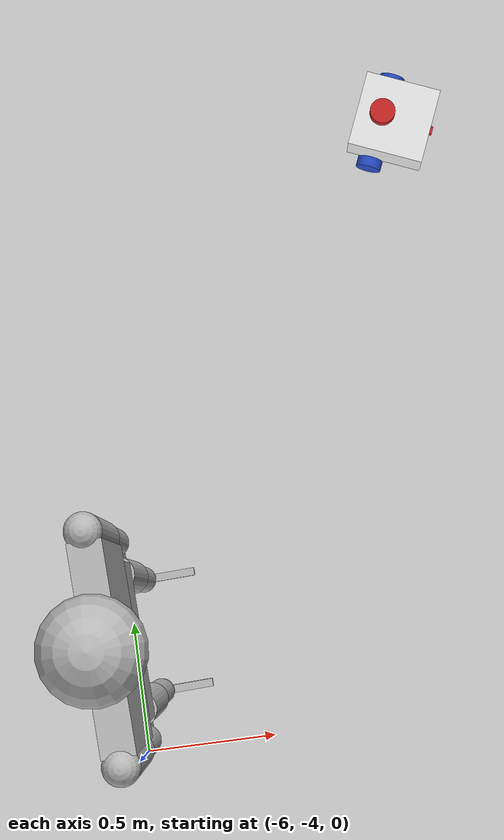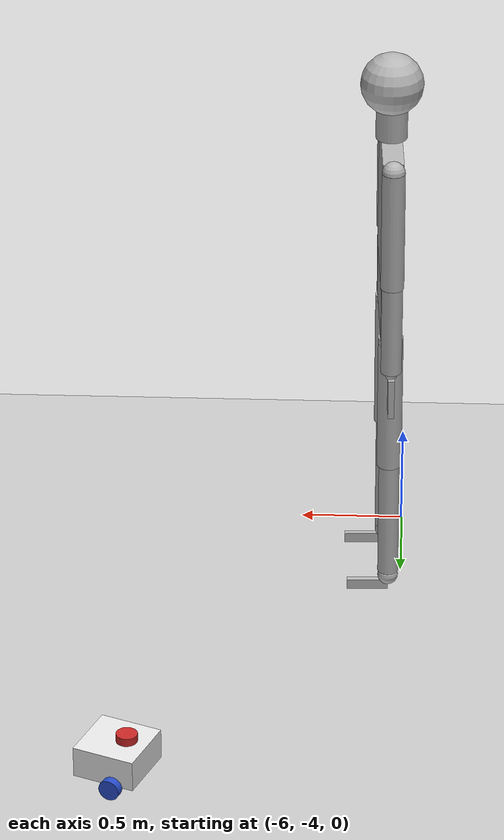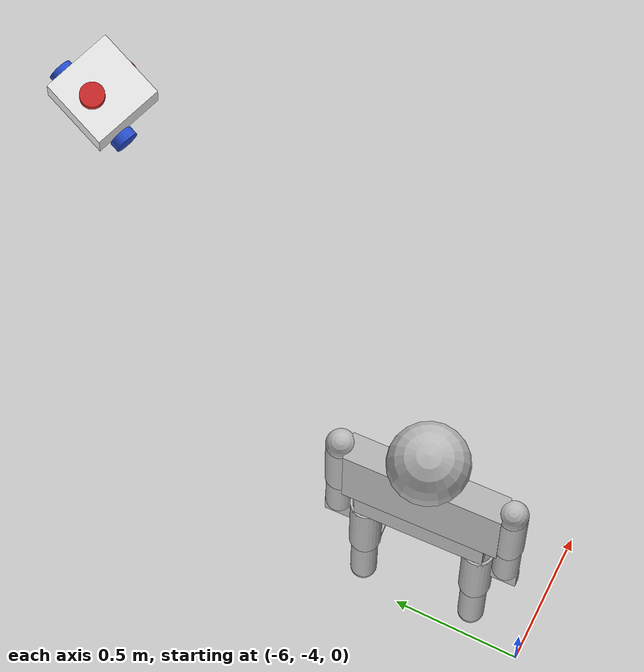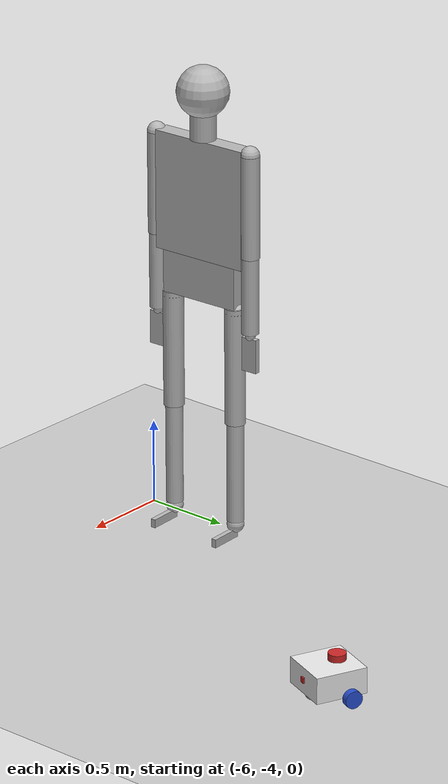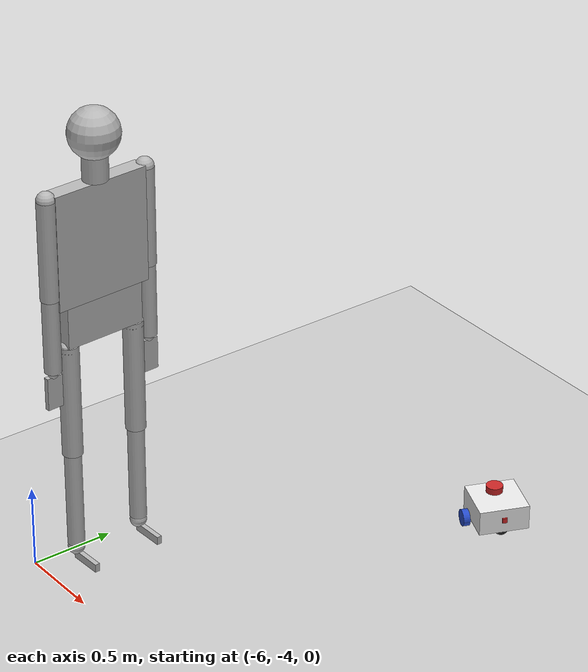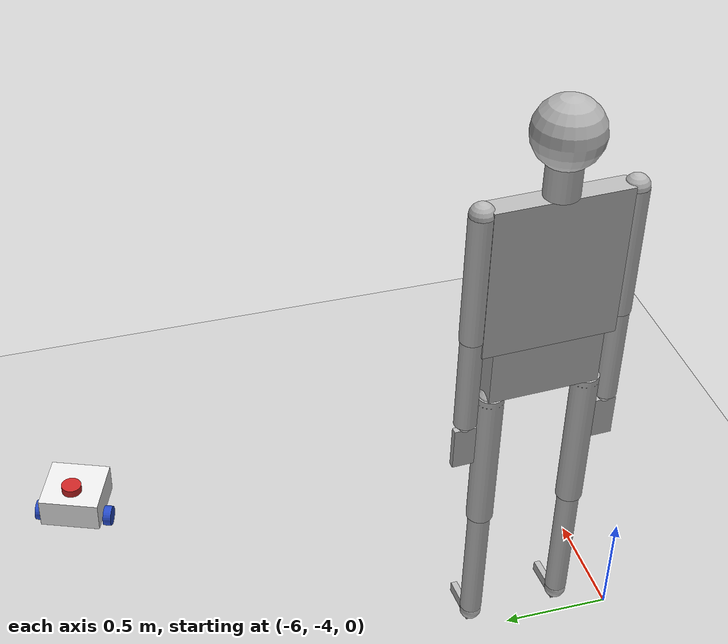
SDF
<sdf version="1.7">
 <world name="default">
  <model name="ground_plane">
   <static>1</static>
   <link name="link">
    <collision name="collision">
     <geometry><plane><normal>0 0 1</normal><size>100 100</size></plane></geometry>
     <surface>
      <contact><collide_bitmask>65535</collide_bitmask></contact>
      <friction><ode><mu>100</mu><mu2>50</mu2></ode></friction>
     </surface>
    </collision>
    <visual name="visual">
     <cast_shadows>0</cast_shadows>
     <geometry><plane><normal>0 0 1</normal><size>100 100</size></plane></geometry>
     <material>
      <script><uri>file://media/materials/scripts/gazebo.material</uri><name>Gazebo/Grey</name></script>
     </material>
    </visual>
   </link>
  </model>
  <model name="my_bot">
   <link name="base_link">
    <inertial>
     <pose>0.055714 0 0.078571 0 -0 0</pose>
     <mass>0.7</mass>
     <inertia>
      <ixx>0.0064169</ixx>
      <ixy>0</ixy>
      <ixz>0.00118929</ixz>
      <iyy>0.00745405</iyy>
      <iyz>0</iyz>
      <izz>0.00876214</izz>
     </inertia>
    </inertial>
    <collision name="base_link_fixed_joint_lump__chassis_collision">
     <pose>0.05 0 0.075 0 -0 0</pose>
     <geometry><box><size>0.3 0.3 0.15</size></box></geometry>
    </collision>
    <collision name="base_link_fixed_joint_lump__caster_wheel_collision_1">
     <pose>0.14 0 0 0 -0 0</pose>
     <geometry><sphere><radius>0.05</radius></sphere></geometry>
     <surface><friction><ode><mu>0.001</mu><mu2>0.001</mu2></ode></friction></surface>
    </collision>
    <collision name="base_link_fixed_joint_lump__laser_frame_collision_2">
     <pose>0 0 0.175 0 -0 0</pose>
     <geometry><cylinder><length>0.04</length><radius>0.05</radius></cylinder></geometry>
    </collision>
    <visual name="base_link_fixed_joint_lump__chassis_visual">
     <pose>0.05 0 0.075 0 -0 0</pose>
     <geometry><box><size>0.3 0.3 0.15</size></box></geometry>
     <material>
      <script><name>Gazebo/White</name><uri>file://media/materials/scripts/gazebo.material</uri></script>
     </material>
    </visual>
    <visual name="base_link_fixed_joint_lump__camera_link_visual_1">
     <pose>0.205 0 0.08 0 -0 0</pose>
     <geometry><box><size>0.01 0.03 0.03</size></box></geometry>
     <material>
      <script><name>Gazebo/Red</name><uri>file://media/materials/scripts/gazebo.material</uri></script>
     </material>
    </visual>
    <visual name="base_link_fixed_joint_lump__caster_wheel_visual_2">
     <pose>0.14 0 0 0 -0 0</pose>
     <geometry><sphere><radius>0.05</radius></sphere></geometry>
     <material>
      <script><name>Gazebo/Black</name><uri>file://media/materials/scripts/gazebo.material</uri></script>
     </material>
    </visual>
    <visual name="base_link_fixed_joint_lump__laser_frame_visual_3">
     <pose>0 0 0.175 0 -0 0</pose>
     <geometry><cylinder><length>0.04</length><radius>0.05</radius></cylinder></geometry>
     <material>
      <script><name>Gazebo/Red</name><uri>file://media/materials/scripts/gazebo.material</uri></script>
     </material>
    </visual>
    <sensor name="camera" type="camera">
     <visualize>1</visualize>
     <update_rate>10</update_rate>
     <camera>
      <horizontal_fov>1.089</horizontal_fov>
      <image><format>R8G8B8</format><width>640</width><height>480</height></image>
      <clip><near>0.05</near><far>8</far></clip>
     </camera>
     <plugin name="camera_controller" filename="libgazebo_ros_camera.so">
      <frame_name>camera_link_optical</frame_name>
     </plugin>
     <pose>0.205 0 0.08 0 -0 0</pose>
    </sensor>
    <sensor name="laser" type="ray">
     <visualize>0</visualize>
     <update_rate>10</update_rate>
     <ray>
      <scan>
       <horizontal>
        <samples>360</samples>
        <min_angle>-3.14</min_angle>
        <max_angle>3.14</max_angle>
        <resolution>1</resolution>
       </horizontal>
       <vertical><samples>1</samples><min_angle>0</min_angle><max_angle>0</max_angle></vertical>
      </scan>
      <range><min>0.3</min><max>12</max></range>
     </ray>
     <plugin name="laser_controller" filename="libgazebo_ros_ray_sensor.so">
      <ros><argument>~/out:=scan</argument></ros>
      <output_type>sensor_msgs/LaserScan</output_type>
      <frame_name>laser_frame</frame_name>
     </plugin>
     <pose>0 0 0.175 0 -0 0</pose>
    </sensor>
   </link>
   <joint name="left_wheel_joint" type="revolute">
    <pose relative_to="base_link">0 0.175 0 -1.5708 0 0</pose>
    <parent>base_link</parent>
    <child>left_wheel</child>
    <axis>
     <xyz>0 0 1</xyz>
     <limit><lower>-1e+16</lower><upper>1e+16</upper></limit>
     <dynamics><spring_reference>0</spring_reference><spring_stiffness>0</spring_stiffness></dynamics>
    </axis>
   </joint>
   <link name="left_wheel">
    <pose relative_to="left_wheel_joint">0 0 0 0 -0 0</pose>
    <inertial>
     <mass>0.1</mass>
     <inertia>
      <ixx>7.58333e-05</ixx>
      <ixy>0</ixy>
      <ixz>0</ixz>
      <iyy>7.58333e-05</iyy>
      <iyz>0</iyz>
      <izz>0.000125</izz>
     </inertia>
    </inertial>
    <collision name="left_wheel_collision">
     <geometry><cylinder><length>0.04</length><radius>0.05</radius></cylinder></geometry>
    </collision>
    <visual name="left_wheel_visual">
     <geometry><cylinder><length>0.04</length><radius>0.05</radius></cylinder></geometry>
     <material>
      <script><name>Gazebo/Blue</name><uri>file://media/materials/scripts/gazebo.material</uri></script>
     </material>
    </visual>
   </link>
   <joint name="right_wheel_joint" type="revolute">
    <pose relative_to="base_link">0 -0.175 0 1.5708 -0 0</pose>
    <parent>base_link</parent>
    <child>right_wheel</child>
    <axis>
     <xyz>0 0 -1</xyz>
     <limit><lower>-1e+16</lower><upper>1e+16</upper></limit>
     <dynamics><spring_reference>0</spring_reference><spring_stiffness>0</spring_stiffness></dynamics>
    </axis>
   </joint>
   <link name="right_wheel">
    <pose relative_to="right_wheel_joint">0 0 0 0 -0 0</pose>
    <inertial>
     <mass>0.1</mass>
     <inertia>
      <ixx>7.58333e-05</ixx>
      <ixy>0</ixy>
      <ixz>0</ixz>
      <iyy>7.58333e-05</iyy>
      <iyz>0</iyz>
      <izz>0.000125</izz>
     </inertia>
    </inertial>
    <collision name="right_wheel_collision">
     <geometry><cylinder><length>0.04</length><radius>0.05</radius></cylinder></geometry>
    </collision>
    <visual name="right_wheel_visual">
     <geometry><cylinder><length>0.04</length><radius>0.05</radius></cylinder></geometry>
     <material>
      <script><name>Gazebo/Blue</name><uri>file://media/materials/scripts/gazebo.material</uri></script>
     </material>
    </visual>
   </link>
   <static>0</static>
   <plugin name="diff_drive" filename="libgazebo_ros_diff_drive.so">
    <left_joint>left_wheel_joint</left_joint>
    <right_joint>right_wheel_joint</right_joint>
    <wheel_separation>0.35</wheel_separation>
    <wheel_diameter>0.1</wheel_diameter>
    <max_wheel_torque>200</max_wheel_torque>
    <max_wheel_acceleration>10.0</max_wheel_acceleration>
    <odometry_frame>odom</odometry_frame>
    <robot_base_frame>base_link</robot_base_frame>
    <publish_odom>1</publish_odom>
    <publish_odom_tf>1</publish_odom_tf>
    <publish_wheel_tf>1</publish_wheel_tf>
   </plugin>
   <pose>-4.76983 -1.62891 0.05 -0 2e-06 -0.390054</pose>
  </model>
  <model name="ragdoll_clone">
   <pose>-5.92132 -3.55143 1.39993 -0.000119 0.004744 0.04412</pose>
   <link name="hip">
    <inertial>
     <inertia><ixx>0.1</ixx><ixy>0</ixy><ixz>0</ixz><iyy>0.1</iyy><iyz>0</iyz><izz>0.1</izz></inertia>
     <mass>10</mass>
    </inertial>
    <collision name="hip_geom">
     <pose>0 0 0.125 0 -0 0</pose>
     <geometry><box><size>0.1 0.5 0.25</size></box></geometry>
     <surface>
      <friction><ode><mu>-1</mu><mu2>-1</mu2><fdir1>0 0 0</fdir1><slip1>0</slip1><slip2>0</slip2></ode></friction>
      <bounce><restitution_coefficient>0</restitution_coefficient><threshold>100000</threshold></bounce>
      <contact>
       <ode>
        <soft_cfm>0</soft_cfm>
        <soft_erp>0.2</soft_erp>
        <kp>1e+12</kp>
        <kd>1</kd>
        <max_vel>0</max_vel>
        <min_depth>0.001</min_depth>
       </ode>
      </contact>
     </surface>
    </collision>
    <visual name="hip_geom_visual">
     <pose>0 0 0.125 0 -0 0</pose>
     <geometry><box><size>0.1 0.5 0.25</size></box></geometry>
    </visual>
    <gravity>0</gravity>
   </link>
   <link name="l_thigh_pan">
    <pose>0 0.22 0 0 -0 0</pose>
    <inertial>
     <inertia><ixx>0.01</ixx><ixy>0</ixy><ixz>0</ixz><iyy>0.01</iyy><iyz>0</iyz><izz>0.01</izz></inertia>
     <mass>1</mass>
    </inertial>
    <collision name="l_thigh_pan_geom">
     <pose>0 0 -0.03 0 -0 0</pose>
     <geometry><sphere><radius>0.06</radius></sphere></geometry>
     <surface>
      <friction><ode><mu>-1</mu><mu2>-1</mu2><fdir1>0 0 0</fdir1><slip1>0</slip1><slip2>0</slip2></ode></friction>
      <bounce><restitution_coefficient>0</restitution_coefficient><threshold>100000</threshold></bounce>
      <contact>
       <ode>
        <soft_cfm>0</soft_cfm>
        <soft_erp>0.2</soft_erp>
        <kp>1e+12</kp>
        <kd>1</kd>
        <max_vel>0</max_vel>
        <min_depth>0.001</min_depth>
       </ode>
      </contact>
     </surface>
    </collision>
    <visual name="l_thigh_pan_geom_visual">
     <pose>0 0 -0.03 0 -0 0</pose>
     <geometry><sphere><radius>0.06</radius></sphere></geometry>
    </visual>
    <gravity>0</gravity>
   </link>
   <link name="l_thigh_lift">
    <pose>0 0.22 0 0 -0 0</pose>
    <inertial>
     <inertia><ixx>0.05</ixx><ixy>0</ixy><ixz>0</ixz><iyy>0.05</iyy><iyz>0</iyz><izz>0.05</izz></inertia>
     <mass>5</mass>
    </inertial>
    <collision name="l_thigh_lift_geom">
     <pose>0 0 -0.35 0 -0 0</pose>
     <geometry><cylinder><radius>0.06</radius><length>0.7</length></cylinder></geometry>
     <surface>
      <friction><ode><mu>-1</mu><mu2>-1</mu2><fdir1>0 0 0</fdir1><slip1>0</slip1><slip2>0</slip2></ode></friction>
      <bounce><restitution_coefficient>0</restitution_coefficient><threshold>100000</threshold></bounce>
      <contact>
       <ode>
        <soft_cfm>0</soft_cfm>
        <soft_erp>0.2</soft_erp>
        <kp>1e+12</kp>
        <kd>1</kd>
        <max_vel>0</max_vel>
        <min_depth>0.001</min_depth>
       </ode>
      </contact>
     </surface>
    </collision>
    <visual name="l_thigh_lift_geom_visual">
     <pose>0 0 -0.35 0 -0 0</pose>
     <geometry><cylinder><radius>0.06</radius><length>0.7</length></cylinder></geometry>
    </visual>
    <gravity>0</gravity>
   </link>
   <link name="l_calf">
    <pose>0 0.22 -0.7 0 -0 0</pose>
    <inertial>
     <inertia><ixx>0.02</ixx><ixy>0</ixy><ixz>0</ixz><iyy>0.02</iyy><iyz>0</iyz><izz>0.02</izz></inertia>
     <mass>2</mass>
    </inertial>
    <collision name="l_calf_geom">
     <pose>0 0 -0.3 0 -0 0</pose>
     <geometry><cylinder><radius>0.05</radius><length>0.6</length></cylinder></geometry>
     <surface>
      <friction><ode><mu>-1</mu><mu2>-1</mu2><fdir1>0 0 0</fdir1><slip1>0</slip1><slip2>0</slip2></ode></friction>
      <bounce><restitution_coefficient>0</restitution_coefficient><threshold>100000</threshold></bounce>
      <contact>
       <ode>
        <soft_cfm>0</soft_cfm>
        <soft_erp>0.2</soft_erp>
        <kp>1e+12</kp>
        <kd>1</kd>
        <max_vel>0</max_vel>
        <min_depth>0.001</min_depth>
       </ode>
      </contact>
     </surface>
    </collision>
    <visual name="l_calf_geom_visual">
     <pose>0 0 -0.3 0 -0 0</pose>
     <geometry><cylinder><radius>0.05</radius><length>0.6</length></cylinder></geometry>
    </visual>
    <gravity>0</gravity>
   </link>
   <link name="l_ankle">
    <pose>0 0.22 -1.325 0 -0 0</pose>
    <inertial>
     <inertia><ixx>0.01</ixx><ixy>0</ixy><ixz>0</ixz><iyy>0.01</iyy><iyz>0</iyz><izz>0.01</izz></inertia>
     <mass>1</mass>
    </inertial>
    <collision name="l_ankle_geom">
     <geometry><sphere><radius>0.05</radius></sphere></geometry>
     <surface>
      <friction><ode><mu>-1</mu><mu2>-1</mu2><fdir1>0 0 0</fdir1><slip1>0</slip1><slip2>0</slip2></ode></friction>
      <bounce><restitution_coefficient>0</restitution_coefficient><threshold>100000</threshold></bounce>
      <contact>
       <ode>
        <soft_cfm>0</soft_cfm>
        <soft_erp>0.2</soft_erp>
        <kp>1e+12</kp>
        <kd>1</kd>
        <max_vel>0</max_vel>
        <min_depth>0.001</min_depth>
       </ode>
      </contact>
     </surface>
    </collision>
    <visual name="l_ankle_geom_visual"><geometry><sphere><radius>0.05</radius></sphere></geometry></visual>
    <gravity>0</gravity>
   </link>
   <link name="l_foot">
    <pose>0 0.22 -1.35 0 -0 0</pose>
    <inertial>
     <pose>0.1 0 0 0 -0 0</pose>
     <inertia><ixx>0.01</ixx><ixy>0</ixy><ixz>0</ixz><iyy>0.01</iyy><iyz>0</iyz><izz>0.01</izz></inertia>
     <mass>1</mass>
    </inertial>
    <collision name="l_foot_geom">
     <pose>0.1 0 -0.025 0 -0 0</pose>
     <geometry><box><size>0.2 0.03 0.05</size></box></geometry>
     <surface>
      <friction><ode><mu>-1</mu><mu2>-1</mu2><fdir1>0 0 0</fdir1><slip1>0</slip1><slip2>0</slip2></ode></friction>
      <bounce><restitution_coefficient>0</restitution_coefficient><threshold>100000</threshold></bounce>
      <contact>
       <ode>
        <soft_cfm>0</soft_cfm>
        <soft_erp>0.2</soft_erp>
        <kp>1e+12</kp>
        <kd>1</kd>
        <max_vel>0</max_vel>
        <min_depth>0.001</min_depth>
       </ode>
      </contact>
     </surface>
    </collision>
    <visual name="l_foot_geom_visual">
     <pose>0.1 0 -0.025 0 -0 0</pose>
     <geometry><box><size>0.2 0.03 0.05</size></box></geometry>
    </visual>
   </link>
   <link name="r_thigh_pan">
    <pose>0 -0.22 0 0 -0 0</pose>
    <inertial>
     <inertia><ixx>0.01</ixx><ixy>0</ixy><ixz>0</ixz><iyy>0.01</iyy><iyz>0</iyz><izz>0.01</izz></inertia>
     <mass>1</mass>
    </inertial>
    <collision name="r_thigh_pan_geom">
     <pose>0 0 -0.03 0 -0 0</pose>
     <geometry><sphere><radius>0.06</radius></sphere></geometry>
     <surface>
      <friction><ode><mu>-1</mu><mu2>-1</mu2><fdir1>0 0 0</fdir1><slip1>0</slip1><slip2>0</slip2></ode></friction>
      <bounce><restitution_coefficient>0</restitution_coefficient><threshold>100000</threshold></bounce>
      <contact>
       <ode>
        <soft_cfm>0</soft_cfm>
        <soft_erp>0.2</soft_erp>
        <kp>1e+12</kp>
        <kd>1</kd>
        <max_vel>0</max_vel>
        <min_depth>0.001</min_depth>
       </ode>
      </contact>
     </surface>
    </collision>
    <visual name="r_thigh_pan_geom_visual">
     <pose>0 0 -0.03 0 -0 0</pose>
     <geometry><sphere><radius>0.06</radius></sphere></geometry>
    </visual>
    <gravity>0</gravity>
   </link>
   <link name="r_thigh_lift">
    <pose>0 -0.22 0 0 -0 0</pose>
    <inertial>
     <inertia><ixx>0.05</ixx><ixy>0</ixy><ixz>0</ixz><iyy>0.05</iyy><iyz>0</iyz><izz>0.05</izz></inertia>
     <mass>5</mass>
    </inertial>
    <collision name="r_thigh_lift_geom">
     <pose>0 0 -0.35 0 -0 0</pose>
     <geometry><cylinder><radius>0.06</radius><length>0.7</length></cylinder></geometry>
     <surface>
      <friction><ode><mu>-1</mu><mu2>-1</mu2><fdir1>0 0 0</fdir1><slip1>0</slip1><slip2>0</slip2></ode></friction>
      <bounce><restitution_coefficient>0</restitution_coefficient><threshold>100000</threshold></bounce>
      <contact>
       <ode>
        <soft_cfm>0</soft_cfm>
        <soft_erp>0.2</soft_erp>
        <kp>1e+12</kp>
        <kd>1</kd>
        <max_vel>0</max_vel>
        <min_depth>0.001</min_depth>
       </ode>
      </contact>
     </surface>
    </collision>
    <visual name="r_thigh_lift_geom_visual">
     <pose>0 0 -0.35 0 -0 0</pose>
     <geometry><cylinder><radius>0.06</radius><length>0.7</length></cylinder></geometry>
    </visual>
    <gravity>0</gravity>
   </link>
   <link name="r_calf">
    <pose>0 -0.22 -0.7 0 -0 0</pose>
    <inertial>
     <inertia><ixx>0.02</ixx><ixy>0</ixy><ixz>0</ixz><iyy>0.02</iyy><iyz>0</iyz><izz>0.02</izz></inertia>
     <mass>2</mass>
    </inertial>
    <collision name="r_calf_geom">
     <pose>0 0 -0.3 0 -0 0</pose>
     <geometry><cylinder><radius>0.05</radius><length>0.6</length></cylinder></geometry>
     <surface>
      <friction><ode><mu>-1</mu><mu2>-1</mu2><fdir1>0 0 0</fdir1><slip1>0</slip1><slip2>0</slip2></ode></friction>
      <bounce><restitution_coefficient>0</restitution_coefficient><threshold>100000</threshold></bounce>
      <contact>
       <ode>
        <soft_cfm>0</soft_cfm>
        <soft_erp>0.2</soft_erp>
        <kp>1e+12</kp>
        <kd>1</kd>
        <max_vel>0</max_vel>
        <min_depth>0.001</min_depth>
       </ode>
      </contact>
     </surface>
    </collision>
    <visual name="r_calf_geom_visual">
     <pose>0 0 -0.3 0 -0 0</pose>
     <geometry><cylinder><radius>0.05</radius><length>0.6</length></cylinder></geometry>
    </visual>
    <gravity>0</gravity>
   </link>
   <link name="r_ankle">
    <pose>0 -0.22 -1.325 0 -0 0</pose>
    <inertial>
     <inertia><ixx>0.01</ixx><ixy>0</ixy><ixz>0</ixz><iyy>0.01</iyy><iyz>0</iyz><izz>0.01</izz></inertia>
     <mass>1</mass>
    </inertial>
    <collision name="r_ankle_geom">
     <geometry><sphere><radius>0.05</radius></sphere></geometry>
     <surface>
      <friction><ode><mu>-1</mu><mu2>-1</mu2><fdir1>0 0 0</fdir1><slip1>0</slip1><slip2>0</slip2></ode></friction>
      <bounce><restitution_coefficient>0</restitution_coefficient><threshold>100000</threshold></bounce>
      <contact>
       <ode>
        <soft_cfm>0</soft_cfm>
        <soft_erp>0.2</soft_erp>
        <kp>1e+12</kp>
        <kd>1</kd>
        <max_vel>0</max_vel>
        <min_depth>0.001</min_depth>
       </ode>
      </contact>
     </surface>
    </collision>
    <visual name="r_ankle_geom_visual"><geometry><sphere><radius>0.05</radius></sphere></geometry></visual>
    <gravity>0</gravity>
   </link>
   <link name="r_foot">
    <pose>0 -0.22 -1.35 0 -0 0</pose>
    <inertial>
     <pose>0.1 0 0 0 -0 0</pose>
     <inertia><ixx>0.01</ixx><ixy>0</ixy><ixz>0</ixz><iyy>0.01</iyy><iyz>0</iyz><izz>0.01</izz></inertia>
     <mass>1</mass>
    </inertial>
    <collision name="r_foot_geom">
     <pose>0.1 0 -0.025 0 -0 0</pose>
     <geometry><box><size>0.2 0.03 0.05</size></box></geometry>
     <surface>
      <friction><ode><mu>-1</mu><mu2>-1</mu2><fdir1>0 0 0</fdir1><slip1>0</slip1><slip2>0</slip2></ode></friction>
      <bounce><restitution_coefficient>0</restitution_coefficient><threshold>100000</threshold></bounce>
      <contact>
       <ode>
        <soft_cfm>0</soft_cfm>
        <soft_erp>0.2</soft_erp>
        <kp>1e+12</kp>
        <kd>1</kd>
        <max_vel>0</max_vel>
        <min_depth>0.001</min_depth>
       </ode>
      </contact>
     </surface>
    </collision>
    <visual name="r_foot_geom_visual">
     <pose>0.1 0 -0.025 0 -0 0</pose>
     <geometry><box><size>0.2 0.03 0.05</size></box></geometry>
    </visual>
   </link>
   <link name="torso">
    <pose>0 0 0.25 0 -0 0</pose>
    <inertial>
     <inertia><ixx>0.3</ixx><ixy>0</ixy><ixz>0</ixz><iyy>0.3</iyy><iyz>0</iyz><izz>0.3</izz></inertia>
     <mass>30</mass>
    </inertial>
    <collision name="torso_geom">
     <pose>0 0 0.35 0 -0 0</pose>
     <geometry><box><size>0.1 0.6 0.7</size></box></geometry>
     <surface>
      <friction><ode><mu>-1</mu><mu2>-1</mu2><fdir1>0 0 0</fdir1><slip1>0</slip1><slip2>0</slip2></ode></friction>
      <bounce><restitution_coefficient>0</restitution_coefficient><threshold>100000</threshold></bounce>
      <contact>
       <ode>
        <soft_cfm>0</soft_cfm>
        <soft_erp>0.2</soft_erp>
        <kp>1e+12</kp>
        <kd>1</kd>
        <max_vel>0</max_vel>
        <min_depth>0.001</min_depth>
       </ode>
      </contact>
     </surface>
    </collision>
    <visual name="torso_geom_visual">
     <pose>0 0 0.35 0 -0 0</pose>
     <geometry><box><size>0.1 0.6 0.7</size></box></geometry>
    </visual>
    <gravity>0</gravity>
   </link>
   <link name="l_shoulder">
    <pose>0 0.3275 0.9225 0 -0 0</pose>
    <inertial>
     <inertia><ixx>0.01</ixx><ixy>0</ixy><ixz>0</ixz><iyy>0.01</iyy><iyz>0</iyz><izz>0.01</izz></inertia>
     <mass>1</mass>
    </inertial>
    <collision name="l_shoulder_geom">
     <geometry><sphere><radius>0.055</radius></sphere></geometry>
     <surface>
      <friction><ode><mu>-1</mu><mu2>-1</mu2><fdir1>0 0 0</fdir1><slip1>0</slip1><slip2>0</slip2></ode></friction>
      <bounce><restitution_coefficient>0</restitution_coefficient><threshold>100000</threshold></bounce>
      <contact>
       <ode>
        <soft_cfm>0</soft_cfm>
        <soft_erp>0.2</soft_erp>
        <kp>1e+12</kp>
        <kd>1</kd>
        <max_vel>0</max_vel>
        <min_depth>0.001</min_depth>
       </ode>
      </contact>
     </surface>
    </collision>
    <visual name="l_shoulder_geom_visual"><geometry><sphere><radius>0.055</radius></sphere></geometry></visual>
    <gravity>0</gravity>
   </link>
   <link name="l_upper_arm">
    <pose>0 0.3275 0.9225 0 -0 0</pose>
    <inertial>
     <inertia><ixx>0.02</ixx><ixy>0</ixy><ixz>0</ixz><iyy>0.02</iyy><iyz>0</iyz><izz>0.02</izz></inertia>
     <mass>2</mass>
    </inertial>
    <collision name="l_upper_arm_geom">
     <pose>0 0 -0.3 0 -0 0</pose>
     <geometry><cylinder><radius>0.055</radius><length>0.6</length></cylinder></geometry>
     <surface>
      <friction><ode><mu>-1</mu><mu2>-1</mu2><fdir1>0 0 0</fdir1><slip1>0</slip1><slip2>0</slip2></ode></friction>
      <bounce><restitution_coefficient>0</restitution_coefficient><threshold>100000</threshold></bounce>
      <contact>
       <ode>
        <soft_cfm>0</soft_cfm>
        <soft_erp>0.2</soft_erp>
        <kp>1e+12</kp>
        <kd>1</kd>
        <max_vel>0</max_vel>
        <min_depth>0.001</min_depth>
       </ode>
      </contact>
     </surface>
    </collision>
    <visual name="l_upper_arm_geom_visual">
     <pose>0 0 -0.3 0 -0 0</pose>
     <geometry><cylinder><radius>0.055</radius><length>0.6</length></cylinder></geometry>
    </visual>
    <gravity>0</gravity>
   </link>
   <link name="l_forearm">
    <pose>0 0.3275 0.3225 0 -0 0</pose>
    <inertial>
     <inertia><ixx>0.01</ixx><ixy>0</ixy><ixz>0</ixz><iyy>0.01</iyy><iyz>0</iyz><izz>0.01</izz></inertia>
     <mass>1</mass>
    </inertial>
    <collision name="l_forearm_geom">
     <pose>0 0 -0.225 0 -0 0</pose>
     <geometry><cylinder><radius>0.05</radius><length>0.45</length></cylinder></geometry>
     <surface>
      <friction><ode><mu>-1</mu><mu2>-1</mu2><fdir1>0 0 0</fdir1><slip1>0</slip1><slip2>0</slip2></ode></friction>
      <bounce><restitution_coefficient>0</restitution_coefficient><threshold>100000</threshold></bounce>
      <contact>
       <ode>
        <soft_cfm>0</soft_cfm>
        <soft_erp>0.2</soft_erp>
        <kp>1e+12</kp>
        <kd>1</kd>
        <max_vel>0</max_vel>
        <min_depth>0.001</min_depth>
       </ode>
      </contact>
     </surface>
    </collision>
    <visual name="l_forearm_geom_visual">
     <pose>0 0 -0.225 0 -0 0</pose>
     <geometry><cylinder><radius>0.05</radius><length>0.45</length></cylinder></geometry>
    </visual>
    <gravity>0</gravity>
   </link>
   <link name="l_wrist">
    <pose>0 0.3275 -0.1425 0 -0 0</pose>
    <inertial>
     <inertia><ixx>0.01</ixx><ixy>0</ixy><ixz>0</ixz><iyy>0.01</iyy><iyz>0</iyz><izz>0.01</izz></inertia>
     <mass>1</mass>
    </inertial>
    <collision name="l_wrist_geom">
     <geometry><sphere><radius>0.03</radius></sphere></geometry>
     <surface>
      <friction><ode><mu>-1</mu><mu2>-1</mu2><fdir1>0 0 0</fdir1><slip1>0</slip1><slip2>0</slip2></ode></friction>
      <bounce><restitution_coefficient>0</restitution_coefficient><threshold>100000</threshold></bounce>
      <contact>
       <ode>
        <soft_cfm>0</soft_cfm>
        <soft_erp>0.2</soft_erp>
        <kp>1e+12</kp>
        <kd>1</kd>
        <max_vel>0</max_vel>
        <min_depth>0.001</min_depth>
       </ode>
      </contact>
     </surface>
    </collision>
    <visual name="l_wrist_geom_visual"><geometry><sphere><radius>0.03</radius></sphere></geometry></visual>
    <gravity>0</gravity>
   </link>
   <link name="l_hand">
    <pose>0 0.3275 -0.1575 0 -0 0</pose>
    <inertial>
     <inertia><ixx>0.01</ixx><ixy>0</ixy><ixz>0</ixz><iyy>0.01</iyy><iyz>0</iyz><izz>0.01</izz></inertia>
     <mass>1</mass>
    </inertial>
    <collision name="l_hand_geom">
     <pose>0 0 -0.1 0 -0 0</pose>
     <geometry><box><size>0.03 0.1 0.2</size></box></geometry>
     <surface>
      <friction><ode><mu>-1</mu><mu2>-1</mu2><fdir1>0 0 0</fdir1><slip1>0</slip1><slip2>0</slip2></ode></friction>
      <bounce><restitution_coefficient>0</restitution_coefficient><threshold>100000</threshold></bounce>
      <contact>
       <ode>
        <soft_cfm>0</soft_cfm>
        <soft_erp>0.2</soft_erp>
        <kp>1e+12</kp>
        <kd>1</kd>
        <max_vel>0</max_vel>
        <min_depth>0.001</min_depth>
       </ode>
      </contact>
     </surface>
    </collision>
    <visual name="l_hand_geom_visual">
     <pose>0 0 -0.1 0 -0 0</pose>
     <geometry><box><size>0.03 0.1 0.2</size></box></geometry>
    </visual>
    <gravity>0</gravity>
   </link>
   <link name="neck">
    <pose>0 0 0.95 0 -0 0</pose>
    <inertial>
     <inertia><ixx>0.01</ixx><ixy>0</ixy><ixz>0</ixz><iyy>0.01</iyy><iyz>0</iyz><izz>0.01</izz></inertia>
     <mass>1</mass>
    </inertial>
    <collision name="neck_geom">
     <pose>0 0 0.1 0 -0 0</pose>
     <geometry><cylinder><radius>0.075</radius><length>0.2</length></cylinder></geometry>
     <surface>
      <friction><ode><mu>-1</mu><mu2>-1</mu2><fdir1>0 0 0</fdir1><slip1>0</slip1><slip2>0</slip2></ode></friction>
      <bounce><restitution_coefficient>0</restitution_coefficient><threshold>100000</threshold></bounce>
      <contact>
       <ode>
        <soft_cfm>0</soft_cfm>
        <soft_erp>0.2</soft_erp>
        <kp>1e+12</kp>
        <kd>1</kd>
        <max_vel>0</max_vel>
        <min_depth>0.001</min_depth>
       </ode>
      </contact>
     </surface>
    </collision>
    <visual name="neck_geom_visual">
     <pose>0 0 0.1 0 -0 0</pose>
     <geometry><cylinder><radius>0.075</radius><length>0.2</length></cylinder></geometry>
    </visual>
    <gravity>0</gravity>
   </link>
   <link name="head">
    <pose>0 0 1.225 0 -0 0</pose>
    <inertial>
     <inertia><ixx>0.1</ixx><ixy>0</ixy><ixz>0</ixz><iyy>0.1</iyy><iyz>0</iyz><izz>0.1</izz></inertia>
     <mass>10</mass>
    </inertial>
    <collision name="head_geom">
     <geometry><sphere><radius>0.15</radius></sphere></geometry>
     <surface>
      <friction><ode><mu>-1</mu><mu2>-1</mu2><fdir1>0 0 0</fdir1><slip1>0</slip1><slip2>0</slip2></ode></friction>
      <bounce><restitution_coefficient>0</restitution_coefficient><threshold>100000</threshold></bounce>
      <contact>
       <ode>
        <soft_cfm>0</soft_cfm>
        <soft_erp>0.2</soft_erp>
        <kp>1e+12</kp>
        <kd>1</kd>
        <max_vel>0</max_vel>
        <min_depth>0.001</min_depth>
       </ode>
      </contact>
     </surface>
    </collision>
    <visual name="head_geom_visual"><geometry><sphere><radius>0.15</radius></sphere></geometry></visual>
    <gravity>0</gravity>
   </link>
   <link name="r_shoulder">
    <pose>0 -0.3275 0.9225 0 -0 0</pose>
    <inertial>
     <inertia><ixx>0.01</ixx><ixy>0</ixy><ixz>0</ixz><iyy>0.01</iyy><iyz>0</iyz><izz>0.01</izz></inertia>
     <mass>1</mass>
    </inertial>
    <collision name="r_shoulder_geom">
     <geometry><sphere><radius>0.055</radius></sphere></geometry>
     <surface>
      <friction><ode><mu>-1</mu><mu2>-1</mu2><fdir1>0 0 0</fdir1><slip1>0</slip1><slip2>0</slip2></ode></friction>
      <bounce><restitution_coefficient>0</restitution_coefficient><threshold>100000</threshold></bounce>
      <contact>
       <ode>
        <soft_cfm>0</soft_cfm>
        <soft_erp>0.2</soft_erp>
        <kp>1e+12</kp>
        <kd>1</kd>
        <max_vel>0</max_vel>
        <min_depth>0.001</min_depth>
       </ode>
      </contact>
     </surface>
    </collision>
    <visual name="r_shoulder_geom_visual"><geometry><sphere><radius>0.055</radius></sphere></geometry></visual>
    <gravity>0</gravity>
   </link>
   <link name="r_upper_arm">
    <pose>0 -0.3275 0.9225 0 -0 0</pose>
    <inertial>
     <inertia><ixx>0.02</ixx><ixy>0</ixy><ixz>0</ixz><iyy>0.02</iyy><iyz>0</iyz><izz>0.02</izz></inertia>
     <mass>2</mass>
    </inertial>
    <collision name="r_upper_arm_geom">
     <pose>0 0 -0.3 0 -0 0</pose>
     <geometry><cylinder><radius>0.055</radius><length>0.6</length></cylinder></geometry>
     <surface>
      <friction><ode><mu>-1</mu><mu2>-1</mu2><fdir1>0 0 0</fdir1><slip1>0</slip1><slip2>0</slip2></ode></friction>
      <bounce><restitution_coefficient>0</restitution_coefficient><threshold>100000</threshold></bounce>
      <contact>
       <ode>
        <soft_cfm>0</soft_cfm>
        <soft_erp>0.2</soft_erp>
        <kp>1e+12</kp>
        <kd>1</kd>
        <max_vel>0</max_vel>
        <min_depth>0.001</min_depth>
       </ode>
      </contact>
     </surface>
    </collision>
    <visual name="r_upper_arm_geom_visual">
     <pose>0 0 -0.3 0 -0 0</pose>
     <geometry><cylinder><radius>0.055</radius><length>0.6</length></cylinder></geometry>
    </visual>
    <gravity>0</gravity>
   </link>
   <link name="r_forearm">
    <pose>0 -0.3275 0.3225 0 -0 0</pose>
    <inertial>
     <inertia><ixx>0.01</ixx><ixy>0</ixy><ixz>0</ixz><iyy>0.01</iyy><iyz>0</iyz><izz>0.01</izz></inertia>
     <mass>1</mass>
    </inertial>
    <collision name="r_forearm_geom">
     <pose>0 0 -0.225 0 -0 0</pose>
     <geometry><cylinder><radius>0.05</radius><length>0.45</length></cylinder></geometry>
     <surface>
      <friction><ode><mu>-1</mu><mu2>-1</mu2><fdir1>0 0 0</fdir1><slip1>0</slip1><slip2>0</slip2></ode></friction>
      <bounce><restitution_coefficient>0</restitution_coefficient><threshold>100000</threshold></bounce>
      <contact>
       <ode>
        <soft_cfm>0</soft_cfm>
        <soft_erp>0.2</soft_erp>
        <kp>1e+12</kp>
        <kd>1</kd>
        <max_vel>0</max_vel>
        <min_depth>0.001</min_depth>
       </ode>
      </contact>
     </surface>
    </collision>
    <visual name="r_forearm_geom_visual">
     <pose>0 0 -0.225 0 -0 0</pose>
     <geometry><cylinder><radius>0.05</radius><length>0.45</length></cylinder></geometry>
    </visual>
    <gravity>0</gravity>
   </link>
   <link name="r_wrist">
    <pose>0 -0.3275 -0.1425 0 -0 0</pose>
    <inertial>
     <inertia><ixx>0.01</ixx><ixy>0</ixy><ixz>0</ixz><iyy>0.01</iyy><iyz>0</iyz><izz>0.01</izz></inertia>
     <mass>1</mass>
    </inertial>
    <collision name="r_wrist_geom">
     <geometry><sphere><radius>0.03</radius></sphere></geometry>
     <surface>
      <friction><ode><mu>-1</mu><mu2>-1</mu2><fdir1>0 0 0</fdir1><slip1>0</slip1><slip2>0</slip2></ode></friction>
      <bounce><restitution_coefficient>0</restitution_coefficient><threshold>100000</threshold></bounce>
      <contact>
       <ode>
        <soft_cfm>0</soft_cfm>
        <soft_erp>0.2</soft_erp>
        <kp>1e+12</kp>
        <kd>1</kd>
        <max_vel>0</max_vel>
        <min_depth>0.001</min_depth>
       </ode>
      </contact>
     </surface>
    </collision>
    <visual name="r_wrist_geom_visual"><geometry><sphere><radius>0.03</radius></sphere></geometry></visual>
    <gravity>0</gravity>
   </link>
   <link name="r_hand">
    <pose>0 -0.3275 -0.1575 0 -0 0</pose>
    <inertial>
     <inertia><ixx>0.01</ixx><ixy>0</ixy><ixz>0</ixz><iyy>0.01</iyy><iyz>0</iyz><izz>0.01</izz></inertia>
     <mass>1</mass>
    </inertial>
    <collision name="r_hand_geom">
     <pose>0 0 -0.1 0 -0 0</pose>
     <geometry><box><size>0.03 0.1 0.2</size></box></geometry>
     <surface>
      <friction><ode><mu>-1</mu><mu2>-1</mu2><fdir1>0 0 0</fdir1><slip1>0</slip1><slip2>0</slip2></ode></friction>
      <bounce><restitution_coefficient>0</restitution_coefficient><threshold>100000</threshold></bounce>
      <contact>
       <ode>
        <soft_cfm>0</soft_cfm>
        <soft_erp>0.2</soft_erp>
        <kp>1e+12</kp>
        <kd>1</kd>
        <max_vel>0</max_vel>
        <min_depth>0.001</min_depth>
       </ode>
      </contact>
     </surface>
    </collision>
    <visual name="r_hand_geom_visual">
     <pose>0 0 -0.1 0 -0 0</pose>
     <geometry><box><size>0.03 0.1 0.2</size></box></geometry>
    </visual>
    <gravity>0</gravity>
   </link>
   <joint name="l_thigh_pan_joint" type="revolute">
    <parent>hip</parent>
    <child>l_thigh_pan</child>
    <axis>
     <dynamics>
      <damping>0</damping>
      <friction>0</friction>
      <spring_reference>0</spring_reference>
      <spring_stiffness>0</spring_stiffness>
     </dynamics>
     <limit><lower>-1.5708</lower><upper>1.5708</upper><effort>0</effort><velocity>0</velocity></limit>
     <xyz expressed_in="__model__">0 0 1</xyz>
    </axis>
   </joint>
   <joint name="l_thigh_lift_joint" type="revolute">
    <parent>l_thigh_pan</parent>
    <child>l_thigh_lift</child>
    <axis>
     <dynamics>
      <damping>0</damping>
      <friction>0</friction>
      <spring_reference>0</spring_reference>
      <spring_stiffness>0</spring_stiffness>
     </dynamics>
     <limit><lower>-1.5708</lower><upper>1.5708</upper><effort>0</effort><velocity>0</velocity></limit>
     <xyz expressed_in="__model__">0 1 0</xyz>
    </axis>
   </joint>
   <joint name="l_calf_joint" type="revolute">
    <parent>l_thigh_lift</parent>
    <child>l_calf</child>
    <axis>
     <dynamics>
      <damping>0</damping>
      <friction>0</friction>
      <spring_reference>0</spring_reference>
      <spring_stiffness>0</spring_stiffness>
     </dynamics>
     <limit><lower>-1.5708</lower><upper>1.5708</upper><effort>0</effort><velocity>0</velocity></limit>
     <xyz expressed_in="__model__">0 1 0</xyz>
    </axis>
   </joint>
   <joint name="l_ankle_joint" type="revolute">
    <parent>l_calf</parent>
    <child>l_ankle</child>
    <axis>
     <dynamics>
      <damping>0</damping>
      <friction>0</friction>
      <spring_reference>0</spring_reference>
      <spring_stiffness>0</spring_stiffness>
     </dynamics>
     <limit><lower>-1.5708</lower><upper>1.5708</upper><effort>0</effort><velocity>0</velocity></limit>
     <xyz expressed_in="__model__">0 1 0</xyz>
    </axis>
   </joint>
   <joint name="l_foot_joint" type="revolute">
    <parent>l_ankle</parent>
    <child>l_foot</child>
    <axis>
     <dynamics>
      <damping>0</damping>
      <friction>0</friction>
      <spring_reference>0</spring_reference>
      <spring_stiffness>0</spring_stiffness>
     </dynamics>
     <limit><lower>-1.5708</lower><upper>1.5708</upper><effort>0</effort><velocity>0</velocity></limit>
     <xyz expressed_in="__model__">1 0 0</xyz>
    </axis>
   </joint>
   <joint name="r_thigh_pan_joint" type="revolute">
    <parent>hip</parent>
    <child>r_thigh_pan</child>
    <axis>
     <dynamics>
      <damping>0</damping>
      <friction>0</friction>
      <spring_reference>0</spring_reference>
      <spring_stiffness>0</spring_stiffness>
     </dynamics>
     <limit><lower>-1.5708</lower><upper>1.5708</upper><effort>0</effort><velocity>0</velocity></limit>
     <xyz expressed_in="__model__">0 0 1</xyz>
    </axis>
   </joint>
   <joint name="r_thigh_lift_joint" type="revolute">
    <parent>r_thigh_pan</parent>
    <child>r_thigh_lift</child>
    <axis>
     <dynamics>
      <damping>0</damping>
      <friction>0</friction>
      <spring_reference>0</spring_reference>
      <spring_stiffness>0</spring_stiffness>
     </dynamics>
     <limit><lower>-1.5708</lower><upper>1.5708</upper><effort>0</effort><velocity>0</velocity></limit>
     <xyz expressed_in="__model__">0 1 0</xyz>
    </axis>
   </joint>
   <joint name="r_calf_joint" type="revolute">
    <parent>r_thigh_lift</parent>
    <child>r_calf</child>
    <axis>
     <dynamics>
      <damping>0</damping>
      <friction>0</friction>
      <spring_reference>0</spring_reference>
      <spring_stiffness>0</spring_stiffness>
     </dynamics>
     <limit><lower>-1.5708</lower><upper>1.5708</upper><effort>0</effort><velocity>0</velocity></limit>
     <xyz expressed_in="__model__">0 1 0</xyz>
    </axis>
   </joint>
   <joint name="r_ankle_joint" type="revolute">
    <parent>r_calf</parent>
    <child>r_ankle</child>
    <axis>
     <dynamics>
      <damping>0</damping>
      <friction>0</friction>
      <spring_reference>0</spring_reference>
      <spring_stiffness>0</spring_stiffness>
     </dynamics>
     <limit><lower>-1.5708</lower><upper>1.5708</upper><effort>0</effort><velocity>0</velocity></limit>
     <xyz expressed_in="__model__">0 1 0</xyz>
    </axis>
   </joint>
   <joint name="r_foot_joint" type="revolute">
    <parent>r_ankle</parent>
    <child>r_foot</child>
    <axis>
     <dynamics>
      <damping>0</damping>
      <friction>0</friction>
      <spring_reference>0</spring_reference>
      <spring_stiffness>0</spring_stiffness>
     </dynamics>
     <limit><lower>-1.5708</lower><upper>1.5708</upper><effort>0</effort><velocity>0</velocity></limit>
     <xyz expressed_in="__model__">1 0 0</xyz>
    </axis>
   </joint>
   <joint name="torso_joint" type="revolute">
    <parent>hip</parent>
    <child>torso</child>
    <axis>
     <dynamics>
      <damping>0</damping>
      <friction>0</friction>
      <spring_reference>0</spring_reference>
      <spring_stiffness>0</spring_stiffness>
     </dynamics>
     <limit><lower>-1.5708</lower><upper>1.5708</upper><effort>0</effort><velocity>0</velocity></limit>
     <xyz expressed_in="__model__">0 1 0</xyz>
    </axis>
   </joint>
   <joint name="l_shoulder_joint" type="revolute">
    <parent>torso</parent>
    <child>l_shoulder</child>
    <axis>
     <dynamics>
      <damping>0</damping>
      <friction>0</friction>
      <spring_reference>0</spring_reference>
      <spring_stiffness>0</spring_stiffness>
     </dynamics>
     <limit><lower>-1.5708</lower><upper>1.5708</upper><effort>0</effort><velocity>0</velocity></limit>
     <xyz expressed_in="__model__">1 0 0</xyz>
    </axis>
   </joint>
   <joint name="l_upper_arm_joint" type="revolute">
    <parent>l_shoulder</parent>
    <child>l_upper_arm</child>
    <axis>
     <dynamics>
      <damping>0</damping>
      <friction>0</friction>
      <spring_reference>0</spring_reference>
      <spring_stiffness>0</spring_stiffness>
     </dynamics>
     <limit><lower>-1.5708</lower><upper>1.5708</upper><effort>0</effort><velocity>0</velocity></limit>
     <xyz expressed_in="__model__">0 1 0</xyz>
    </axis>
   </joint>
   <joint name="l_forearm_joint" type="revolute">
    <parent>l_upper_arm</parent>
    <child>l_forearm</child>
    <axis>
     <dynamics>
      <damping>0</damping>
      <friction>0</friction>
      <spring_reference>0</spring_reference>
      <spring_stiffness>0</spring_stiffness>
     </dynamics>
     <limit><lower>-1.5708</lower><upper>1.5708</upper><effort>0</effort><velocity>0</velocity></limit>
     <xyz expressed_in="__model__">0 1 0</xyz>
    </axis>
   </joint>
   <joint name="l_wrist_joint" type="revolute">
    <parent>l_forearm</parent>
    <child>l_wrist</child>
    <axis>
     <dynamics>
      <damping>0</damping>
      <friction>0</friction>
      <spring_reference>0</spring_reference>
      <spring_stiffness>0</spring_stiffness>
     </dynamics>
     <limit><lower>-1.5708</lower><upper>1.5708</upper><effort>0</effort><velocity>0</velocity></limit>
     <xyz expressed_in="__model__">0 1 0</xyz>
    </axis>
   </joint>
   <joint name="l_hand_joint" type="revolute">
    <parent>l_wrist</parent>
    <child>l_hand</child>
    <axis>
     <dynamics>
      <damping>0</damping>
      <friction>0</friction>
      <spring_reference>0</spring_reference>
      <spring_stiffness>0</spring_stiffness>
     </dynamics>
     <limit><lower>-1.5708</lower><upper>1.5708</upper><effort>0</effort><velocity>0</velocity></limit>
     <xyz expressed_in="__model__">0 1 0</xyz>
    </axis>
   </joint>
   <joint name="neck_joint" type="revolute">
    <parent>torso</parent>
    <child>neck</child>
    <axis>
     <dynamics>
      <damping>0</damping>
      <friction>0</friction>
      <spring_reference>0</spring_reference>
      <spring_stiffness>0</spring_stiffness>
     </dynamics>
     <limit><lower>-1.5708</lower><upper>1.5708</upper><effort>0</effort><velocity>0</velocity></limit>
     <xyz expressed_in="__model__">0 0 1</xyz>
    </axis>
   </joint>
   <joint name="head_joint" type="revolute">
    <parent>neck</parent>
    <child>head</child>
    <axis>
     <dynamics>
      <damping>0</damping>
      <friction>0</friction>
      <spring_reference>0</spring_reference>
      <spring_stiffness>0</spring_stiffness>
     </dynamics>
     <limit><lower>-1.5708</lower><upper>1.5708</upper><effort>0</effort><velocity>0</velocity></limit>
     <xyz expressed_in="__model__">0 1 0</xyz>
    </axis>
   </joint>
   <joint name="r_shoulder_joint" type="revolute">
    <parent>torso</parent>
    <child>r_shoulder</child>
    <axis>
     <dynamics>
      <damping>0</damping>
      <friction>0</friction>
      <spring_reference>0</spring_reference>
      <spring_stiffness>0</spring_stiffness>
     </dynamics>
     <limit><lower>-1.5708</lower><upper>1.5708</upper><effort>0</effort><velocity>0</velocity></limit>
     <xyz expressed_in="__model__">1 0 0</xyz>
    </axis>
   </joint>
   <joint name="r_upper_arm_joint" type="revolute">
    <parent>r_shoulder</parent>
    <child>r_upper_arm</child>
    <axis>
     <dynamics>
      <damping>0</damping>
      <friction>0</friction>
      <spring_reference>0</spring_reference>
      <spring_stiffness>0</spring_stiffness>
     </dynamics>
     <limit><lower>-1.5708</lower><upper>1.5708</upper><effort>0</effort><velocity>0</velocity></limit>
     <xyz expressed_in="__model__">0 1 0</xyz>
    </axis>
   </joint>
   <joint name="r_forearm_joint" type="revolute">
    <parent>r_upper_arm</parent>
    <child>r_forearm</child>
    <axis>
     <dynamics>
      <damping>0</damping>
      <friction>0</friction>
      <spring_reference>0</spring_reference>
      <spring_stiffness>0</spring_stiffness>
     </dynamics>
     <limit><lower>-1.5708</lower><upper>1.5708</upper><effort>0</effort><velocity>0</velocity></limit>
     <xyz expressed_in="__model__">0 1 0</xyz>
    </axis>
   </joint>
   <joint name="r_wrist_joint" type="revolute">
    <parent>r_forearm</parent>
    <child>r_wrist</child>
    <axis>
     <dynamics>
      <damping>0</damping>
      <friction>0</friction>
      <spring_reference>0</spring_reference>
      <spring_stiffness>0</spring_stiffness>
     </dynamics>
     <limit><lower>-1.5708</lower><upper>1.5708</upper><effort>0</effort><velocity>0</velocity></limit>
     <xyz expressed_in="__model__">0 1 0</xyz>
    </axis>
   </joint>
   <joint name="r_hand_joint" type="revolute">
    <parent>r_wrist</parent>
    <child>r_hand</child>
    <axis>
     <dynamics>
      <damping>0</damping>
      <friction>0</friction>
      <spring_reference>0</spring_reference>
      <spring_stiffness>0</spring_stiffness>
     </dynamics>
     <limit><lower>-1.5708</lower><upper>1.5708</upper><effort>0</effort><velocity>0</velocity></limit>
     <xyz expressed_in="__model__">0 1 0</xyz>
    </axis>
   </joint>
   <static>0</static>
  </model>
 </world>
</sdf>
